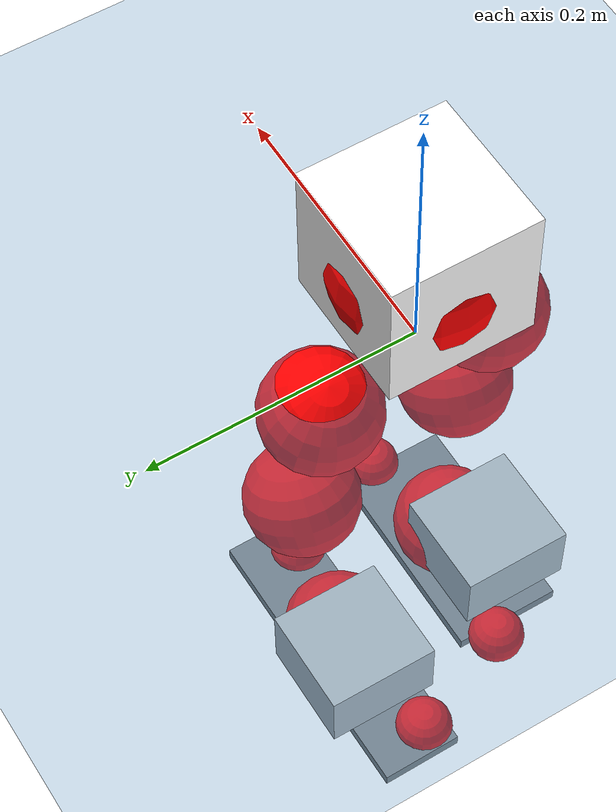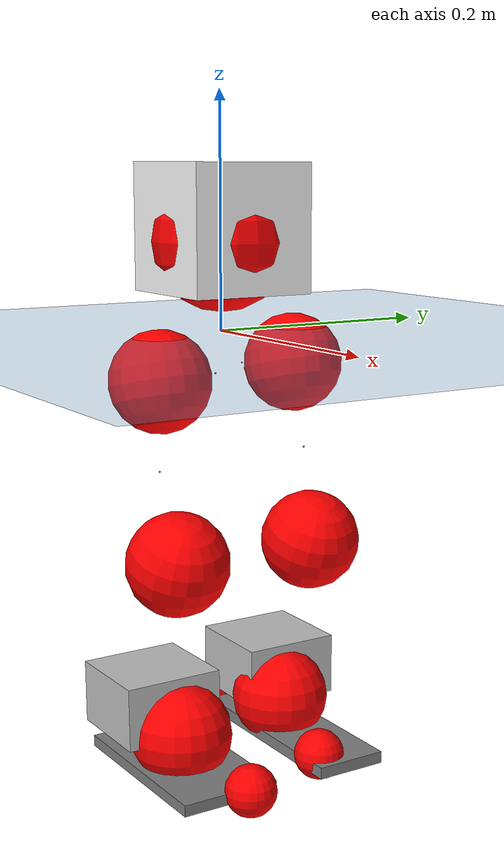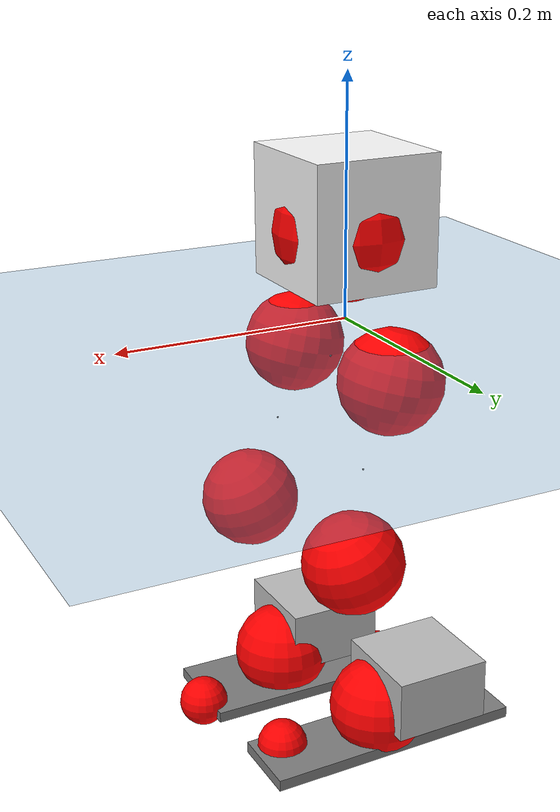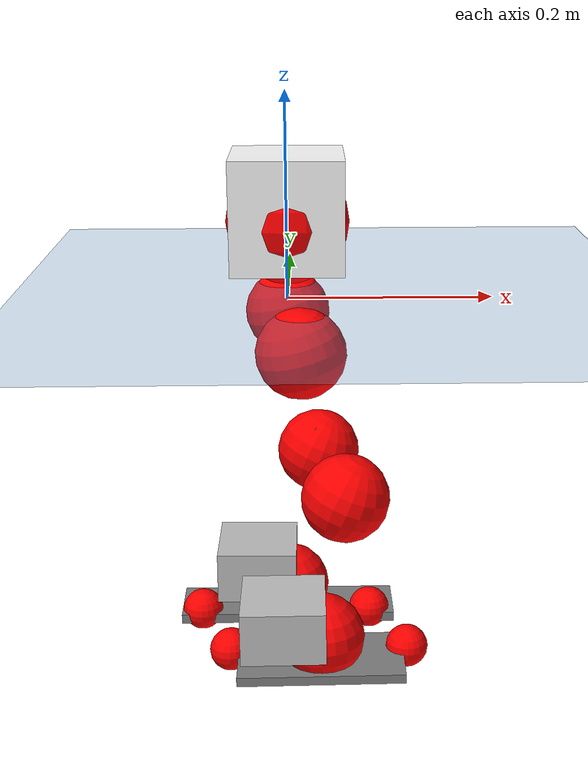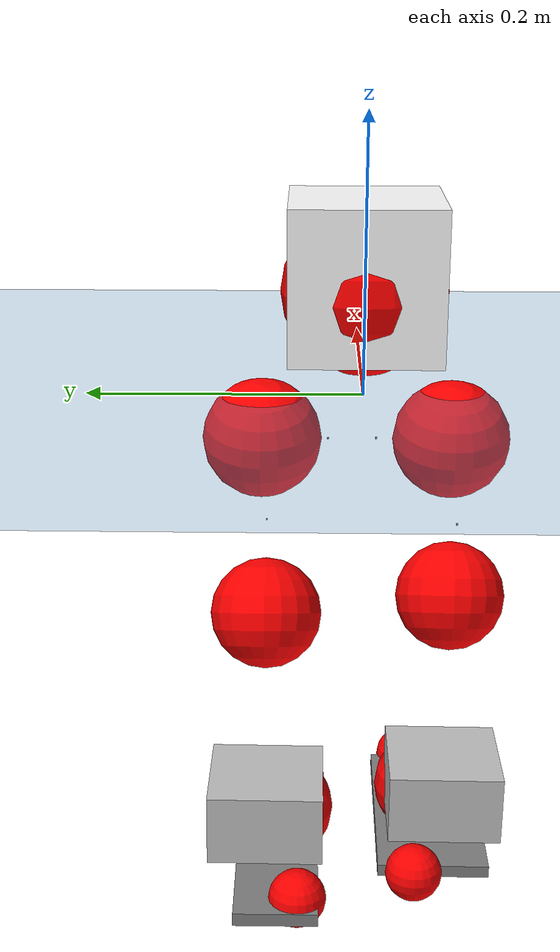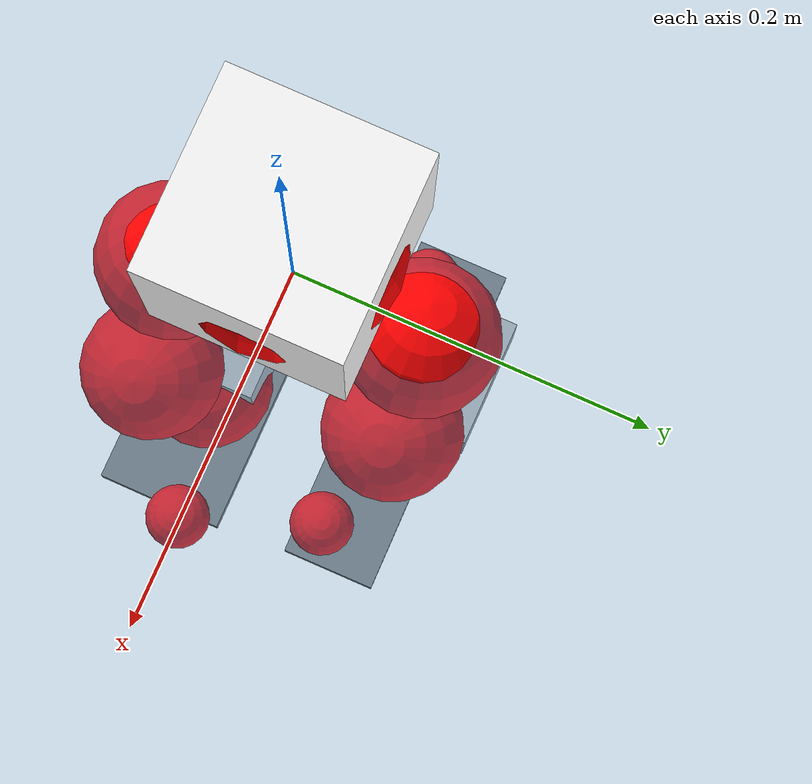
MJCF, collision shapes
<mujoco model="pi_12dof_release_v1">
  <compiler angle="radian" assetdir="assets" balanceinertia="true" inertiafromgeom="false"/>

  <option timestep="0.005" density="1.2" viscosity="2e-05"/>

  <size nkey="1"/>

  <visual>
    <quality shadowsize="8192"/>
    <map shadowclip="0.5"/>
  </visual>

  <default>
    <default class="/">
      <joint armature="0.01" damping="0.01" frictionloss="0.01"/>
      <geom contype="0" conaffinity="0" group="1" solref="-1000 -80"/>
      <site size="0.01 0.005 0.005" group="5"/>
      <general forcelimited="true" biastype="affine" gainprm="20" biasprm="0 -20 -0.5"/>
      <default class="foot">
        <geom size="0.0845 0.036 0.005" type="box" condim="6" group="4" priority="1" friction="0.9 0.2 0.2" solimp="0.015 1 0.005"/>
      </default>
      <default class="reward_collision_sphere">
        <geom group="5" rgba="1 0 0 1"/>
      </default>
    </default>
  </default>

  <asset>
    <texture type="skybox" colorspace="auto" name="//unnamed_texture_0" builtin="gradient" rgb1="0.95 0.95 0.95" rgb2="0.95 0.95 0.95" width="100" height="600"/>
    <texture type="2d" colorspace="auto" name="texplane" builtin="checker" rgb1="0.345 0.575 0.748" rgb2="0.345 0.575 0.748" markrgb="1 1 1" width="512" height="512"/>
    <material name="MatPlane" class="/" texture="texplane" texuniform="true" texrepeat="2 2" specular="0.9"/>
    <mesh name="baselink_1" class="/" file="baselink_1.STL"/>
    <mesh name="r_hip_pitch_link" class="/" file="r_hip_pitch_link.STL"/>
    <mesh name="r_hip_roll_link" class="/" file="r_hip_roll_link.STL"/>
    <mesh name="r_thigh_link" class="/" file="r_thigh_link.STL"/>
    <mesh name="r_calf_link" class="/" file="r_calf_link.STL"/>
    <mesh name="r_ankle_pitch_link" class="/" file="r_ankle_pitch_link.STL"/>
    <mesh name="r_ankle_roll_link" class="/" file="r_ankle_roll_link.STL"/>
    <mesh name="l_hip_pitch_link" class="/" file="l_hip_pitch_link.STL"/>
    <mesh name="l_hip_roll_link" class="/" file="l_hip_roll_link.STL"/>
    <mesh name="l_thigh_link" class="/" file="l_thigh_link.STL"/>
    <mesh name="l_calf_link" class="/" file="l_calf_link.STL"/>
    <mesh name="l_ankle_pitch_link" class="/" file="l_ankle_pitch_link.STL"/>
    <mesh name="l_ankle_roll_link" class="/" file="l_ankle_roll_link.STL"/>
  </asset>

  <worldbody>
    <geom name="floor" class="/" size="100 100 0.125" type="plane" group="0" material="MatPlane"/>
    <light name="toplight_shadow" class="/" pos="0 0 5" dir="0.0990148 0.0990148 -0.990148" type="directional" ambient="0.04 0.04 0.04" diffuse="0.55 0.55 0.55" specular="0.12 0.12 0.12"/>
    <light name="toplight_fill" class="/" pos="0 0 5" dir="0.0990148 0.0990148 -0.990148" type="directional" castshadow="false" ambient="0.04 0.04 0.04" diffuse="0.3 0.3 0.3" specular="0.08 0.08 0.08"/>
    <body name="trunk" pos="0.000810404 0.00043408 -0.0020044" quat="0.999999 0.000202499 0.00150339 0.000514606">
      <inertial pos="0.0148828 0.00834632 0.0478537" quat="0.694865 0.0101174 0.0108355 0.718987" mass="2.42179" diaginertia="0.043382 0.00280654 0.0071495"/>
      <joint name="//unnamed_joint_0" type="free"/>
      <geom name="//unnamed_geom_1" class="/" type="mesh" density="0" rgba="1 1 1 1" mesh="baselink_1"/>
      <geom name="//unnamed_geom_2" class="/" size="0.0540201 0.0540201 0.0540201" pos="0 0 0.088788" type="box" rgba="1 1 1 1"/>
      <geom name="//unnamed_geom_3" class="reward_collision_sphere" size="0.0594221" pos="0 0 0.0776895"/>
      <site name="imu" class="/" pos="-0.0484631 0.00273037 0.0481865" size="0.010804"/>
      <camera name="track" class="/" pos="0 -1.5845 0" quat="0.707107 0.707107 0 0" mode="trackcom"/>
      <camera name="ego_camera" class="/" pos="0.100433 0 0.199773" quat="-0.5 -0.5 0.5 0.5"/>
      <body name="r_hip_pitch_link" pos="0.00681413 -0.0105769 -0.0325872" quat="0.992202 0.000254937 -0.124643 -0.000125792">
        <inertial pos="0.00233471 -0.0369699 -0.000332008" quat="-0.0190663 0.705846 -0.0272644 0.707583" mass="0.507839" diaginertia="0.000545859 3.84074e-05 0.00016048"/>
        <joint name="r_hip_pitch_joint" class="/" pos="0 0 0" axis="-0.018514 -0.999808 -0.0063804" range="-1.71039 1.45539" armature="0.0153025" damping="0.0185416" frictionloss="0.0123665"/>
        <geom name="//unnamed_geom_4" class="/" type="mesh" density="0" rgba="0.75294 0.75294 0.75294 1" mesh="r_hip_pitch_link"/>
        <geom name="//unnamed_geom_5" class="/" size="0.000540201 0.000540201 0.000540201" type="box" rgba="0.75294 0.75294 0.75294 1"/>
        <body name="r_hip_roll_link" pos="0.00470644 -0.0553429 -0.00335332" quat="0.999989 0.00274522 -0.00141664 -0.00339285">
          <inertial pos="0.00082866 0.000786171 -0.0722582" quat="0.704584 -0.0751314 -0.118085 0.695681" mass="0.518508" diaginertia="0.00141704 9.69334e-05 0.000208691"/>
          <joint name="r_hip_roll_joint" class="/" pos="0 0 0" axis="-0.999449 0.00935136 0.0318447" stiffness="0.00618223" range="-0.0968414 0.508263" armature="0.0135971" damping="0.0526505" frictionloss="0.00533775"/>
          <geom name="//unnamed_geom_6" class="/" type="mesh" density="0" rgba="0.75294 0.75294 0.75294 1" mesh="r_hip_roll_link"/>
          <geom name="//unnamed_geom_7" class="/" size="0.000540201 0.000540201 0.000540201" type="box" rgba="0.75294 0.75294 0.75294 1"/>
          <geom name="//unnamed_geom_8" class="reward_collision_sphere" size="0.0432161"/>
          <body name="r_thigh_link" pos="-0.00517379 -0.00887022 -0.0731151" quat="1 -0.000159278 6.69892e-05 -4.49394e-05">
            <inertial pos="0.00180484 0.00116476 -0.0493083" quat="0.734406 0.678672 0.00385776 -0.00606883" mass="0.143637" diaginertia="0.000589353 2.99134e-05 9.69911e-05"/>
            <joint name="r_thigh_joint" class="/" pos="0 0 0" axis="0.000161772 6.33524e-05 -1" range="-0.174322 0.575001" armature="0.00496296" damping="0.0105002" frictionloss="0.00872072"/>
            <geom name="//unnamed_geom_9" class="/" type="mesh" density="0" rgba="0.75294 0.75294 0.75294 1" mesh="r_thigh_link"/>
            <geom name="//unnamed_geom_10" class="/" size="0.000540201 0.000540201 0.000540201" type="box" rgba="0.75294 0.75294 0.75294 1"/>
            <body name="r_calf_link" pos="0.00993249 -7.83171e-05 -0.0763473" quat="0.947695 0.000342406 0.319177 0.000281847">
              <inertial pos="0.00490412 0.0110116 -0.0717786" quat="0.99842 -0.0532942 -0.0165059 -0.00670876" mass="1.01215" diaginertia="0.0166628 0.000967472 0.000320897"/>
              <joint name="r_calf_joint" class="/" pos="0 0 0" axis="-0.00646894 -0.999517 -0.0303832" range="-1.64212 0.592041" armature="0.0129613" damping="0.00937225" frictionloss="0.0116184"/>
              <geom name="//unnamed_geom_11" class="/" type="mesh" density="0" rgba="0.75294 0.75294 0.75294 1" mesh="r_calf_link"/>
              <geom name="//unnamed_geom_12" class="/" size="0.000540201 0.000540201 0.000540201" type="box" rgba="0.75294 0.75294 0.75294 1"/>
              <geom name="//unnamed_geom_13" class="reward_collision_sphere" size="0.0432161"/>
              <body name="r_ankle_pitch_link" pos="-0.00487939 0.00495989 -0.147472" quat="0.97964 -0.000789527 -0.200735 0.00333139">
                <inertial pos="-0.00355664 0.00431994 0.00454056" quat="-0.0204021 0.707787 0.00644219 0.706102" mass="0.201307" diaginertia="0.00141093 7.59919e-05 0.000176851"/>
                <joint name="r_ankle_pitch_joint" class="/" pos="0 0 0" axis="-0.029622 -0.999557 -0.00299279" stiffness="0.0301295" range="-1.47329 0.386872" armature="0.00811666" damping="0.0456037" frictionloss="0.010094"/>
                <geom name="//unnamed_geom_14" class="/" type="mesh" density="0" rgba="0.75294 0.75294 0.75294 1" mesh="r_ankle_pitch_link"/>
                <geom name="//unnamed_geom_15" class="/" size="0.0421357 0.0432161 0.02701" type="box" rgba="0.75294 0.75294 0.75294 1"/>
                <body name="r_ankle_roll_link" pos="0.105395 0.00731643 -0.000874546" quat="0.999997 -0.000589429 -0.00151467 -0.00165397">
                  <inertial pos="-0.0249403 0.000754344 -0.0183355" quat="0.52396 0.458468 0.460527 0.550625" mass="0.55907" diaginertia="0.00427622 0.000304778 0.000439045"/>
                  <joint name="r_ankle_roll_joint" class="/" pos="0 0 0" axis="-0.999771 -0.0130265 -0.0169554" range="-0.263188 0.195172" armature="0.00531913" damping="0.00399238" frictionloss="0.010321"/>
                  <geom name="//unnamed_geom_16" class="/" type="mesh" density="0" rgba="0.75294 0.75294 0.75294 1" mesh="r_ankle_roll_link"/>
                  <geom name="//unnamed_geom_17" class="/" type="mesh" rgba="0.75294 0.75294 0.75294 1" mesh="r_ankle_roll_link"/>
                  <geom name="right_foot" class="foot" size="0.0842216 0.042592 0.00475558" pos="-0.0682943 0 -0.0488334"/>
                  <geom name="//unnamed_geom_19" class="reward_collision_sphere" size="0.0432161" pos="-0.0669552 0 -0.022197"/>
                  <geom name="//unnamed_geom_20" class="reward_collision_sphere" size="0.021608" pos="0.0200866 0.015845 -0.044394"/>
                  <geom name="//unnamed_geom_21" class="reward_collision_sphere" size="0.021608" pos="-0.160692 0.015845 -0.044394"/>
                  <site name="right_foot" class="foot" pos="-0.0682943 0 -0.0488334" size="0.010804"/>
                </body>
              </body>
            </body>
          </body>
        </body>
      </body>
      <body name="l_hip_pitch_link" pos="-0.00872292 0.024788 -0.0280522" quat="0.992222 0.000129714 -0.12448 -0.000335357">
        <inertial pos="0.000283427 0.0370343 0.0101511" quat="-0.0259911 0.681118 0.0235049 0.731335" mass="0.431594" diaginertia="0.000411116 2.87795e-05 0.000156132"/>
        <joint name="l_hip_pitch_joint" class="/" pos="0 0 0" axis="-0.00468012 0.999981 0.00400487" stiffness="0.0274206" range="-1.23679 1.75134" armature="0.0117735" damping="0" frictionloss="0.0139314"/>
        <geom name="//unnamed_geom_22" class="/" type="mesh" density="0" rgba="0.75294 0.75294 0.75294 1" mesh="l_hip_pitch_link"/>
        <geom name="//unnamed_geom_23" class="/" size="0.000540201 0.000540201 0.000540201" type="box" rgba="0.75294 0.75294 0.75294 1"/>
        <body name="l_hip_roll_link" pos="0.0060727 0.0478231 -0.00356836" quat="0.999999 0.000319943 0.000418096 -0.00124594">
          <inertial pos="0.00894503 -0.00158065 -0.0571616" quat="0.695874 -0.0805345 -0.0759746 0.709578" mass="0.545973" diaginertia="0.00176039 8.61572e-05 0.000226533"/>
          <joint name="l_hip_roll_joint" class="/" pos="0 0 0" axis="-0.999999 -0.000615309 -0.000859983" range="-0.540577 0.114957" armature="0.0112748" damping="0" frictionloss="0.0132799"/>
          <geom name="//unnamed_geom_24" class="/" type="mesh" density="0" rgba="0.75294 0.75294 0.75294 1" mesh="l_hip_roll_link"/>
          <geom name="//unnamed_geom_25" class="/" size="0.000540201 0.000540201 0.000540201" type="box" rgba="0.75294 0.75294 0.75294 1"/>
          <geom name="//unnamed_geom_26" class="reward_collision_sphere" size="0.0432161"/>
          <body name="l_thigh_link" pos="0.00416587 -0.00264672 -0.0753299" quat="1 -0.000633813 0.000195463 0.00016975">
            <inertial pos="-0.00395906 -0.0096878 -0.0512197" quat="0.667552 0.744165 -0.00888905 -0.0226687" mass="0.121494" diaginertia="0.000492619 2.25237e-05 8.16552e-05"/>
            <joint name="l_thigh_joint" class="/" pos="0 0 0" axis="-0.000591656 -0.000949477 -0.999999" stiffness="0.0404859" range="-0.400553 0.398346" armature="0.00990138" damping="0.00213938" frictionloss="0.0116539"/>
            <geom name="//unnamed_geom_27" class="/" type="mesh" density="0" rgba="0.75294 0.75294 0.75294 1" mesh="l_thigh_link"/>
            <geom name="//unnamed_geom_28" class="/" size="0.000540201 0.000540201 0.000540201" type="box" rgba="0.75294 0.75294 0.75294 1"/>
            <body name="l_calf_link" pos="-0.0115848 0.0011442 -0.0812235" quat="0.947845 -0.00106358 0.318731 -0.000114786">
              <inertial pos="0.00522852 -0.00138449 -0.0671365" quat="0.998006 0.0162703 0.0481256 0.0374709" mass="1.05531" diaginertia="0.0173586 0.00127075 0.000335508"/>
              <joint name="l_calf_joint" class="/" pos="0 0 0" axis="-0.0161544 0.999291 -0.0340077" range="-0.671927 1.60983" armature="0.0108728" damping="0.038234" frictionloss="0.00957658"/>
              <geom name="//unnamed_geom_29" class="/" type="mesh" density="0" rgba="0.75294 0.75294 0.75294 1" mesh="l_calf_link"/>
              <geom name="//unnamed_geom_30" class="/" size="0.000540201 0.000540201 0.000540201" type="box" rgba="0.75294 0.75294 0.75294 1"/>
              <geom name="//unnamed_geom_31" class="reward_collision_sphere" size="0.0432161"/>
              <body name="l_ankle_pitch_link" pos="-0.0104793 -0.0019196 -0.146186" quat="0.980401 0.0035807 -0.196977 0.000596974">
                <inertial pos="0.00784504 -0.00545371 -0.000622736" quat="-0.00311983 0.707176 0.00369968 0.707021" mass="0.256824" diaginertia="0.00153527 7.24771e-05 0.000212679"/>
                <joint name="l_ankle_pitch_joint" class="/" pos="0 0 0" axis="0.00460102 0.999959 -0.0078363" range="-0.423941 1.41422" armature="0.0135379" damping="0" frictionloss="0.00925486"/>
                <geom name="//unnamed_geom_32" class="/" type="mesh" density="0" rgba="0.75294 0.75294 0.75294 1" mesh="l_ankle_pitch_link"/>
                <geom name="//unnamed_geom_33" class="/" size="0.0421357 0.0432161 0.02701" type="box" rgba="0.75294 0.75294 0.75294 1"/>
                <body name="l_ankle_roll_link" pos="0.100784 -0.00754155 0.000143187" quat="0.999988 -0.00148995 -0.00109191 0.0044517">
                  <inertial pos="-0.0398222 0.00319536 -0.0173847" quat="0.58066 0.411073 0.446686 0.542518" mass="0.627787" diaginertia="0.00498825 0.000320568 0.000501404"/>
                  <joint name="l_ankle_roll_joint" class="/" pos="0 0 0" axis="-0.999961 0.00332939 0.0081924" stiffness="0.0468622" range="-0.318931 0.272078" armature="0.00641042" damping="0" frictionloss="0.00904692"/>
                  <geom name="//unnamed_geom_34" class="/" type="mesh" density="0" rgba="0.75294 0.75294 0.75294 1" mesh="l_ankle_roll_link"/>
                  <geom name="//unnamed_geom_35" class="/" type="mesh" rgba="0.75294 0.75294 0.75294 1" mesh="l_ankle_roll_link"/>
                  <geom name="left_foot" class="foot" size="0.11471 0.0314132 0.00505752" pos="-0.0682943 0 -0.0488334"/>
                  <geom name="//unnamed_geom_37" class="reward_collision_sphere" size="0.0432161" pos="-0.0669552 0 -0.022197"/>
                  <geom name="//unnamed_geom_38" class="reward_collision_sphere" size="0.021608" pos="0.0200866 -0.015845 -0.044394"/>
                  <geom name="//unnamed_geom_39" class="reward_collision_sphere" size="0.021608" pos="-0.160692 -0.015845 -0.044394"/>
                  <site name="left_foot" class="foot" pos="-0.0682943 0 -0.0488334" size="0.010804"/>
                </body>
              </body>
            </body>
          </body>
        </body>
      </body>
    </body>
  </worldbody>

  <contact>
    <pair class="/" geom1="floor" geom2="right_foot" name="//unnamed_contact_1"/>
    <pair class="/" geom1="floor" geom2="left_foot" name="//unnamed_contact_0"/>
  </contact>

  <actuator>
    <general name="r_hip_pitch_joint" class="/" joint="r_hip_pitch_joint" forcerange="-16.3193 16.3193" gainprm="28.0088" biasprm="0 -28.0088 -0.604242"/>
    <general name="r_hip_roll_joint" class="/" joint="r_hip_roll_joint" forcerange="-23.1197 23.1197" gainprm="28.0088" biasprm="0 -28.0088 -0.604242"/>
    <general name="r_thigh_joint" class="/" joint="r_thigh_joint" forcerange="-24.1171 24.1171" gainprm="28.0088" biasprm="0 -28.0088 -0.604242"/>
    <general name="r_calf_joint" class="/" joint="r_calf_joint" forcerange="-14.6395 14.6395" gainprm="28.0088" biasprm="0 -28.0088 -0.604242"/>
    <general name="r_ankle_pitch_joint" class="/" joint="r_ankle_pitch_joint" forcerange="-22.8862 22.8862" gainprm="28.0088" biasprm="0 -28.0088 -0.604242"/>
    <general name="r_ankle_roll_joint" class="/" joint="r_ankle_roll_joint" forcerange="-21.597 21.597" gainprm="28.0088" biasprm="0 -28.0088 -0.604242"/>
    <general name="l_hip_pitch_joint" class="/" joint="l_hip_pitch_joint" forcerange="-28.8349 28.8349" gainprm="28.0088" biasprm="0 -28.0088 -0.604242"/>
    <general name="l_hip_roll_joint" class="/" joint="l_hip_roll_joint" forcerange="-31.407 31.407" gainprm="28.0088" biasprm="0 -28.0088 -0.604242"/>
    <general name="l_thigh_joint" class="/" joint="l_thigh_joint" forcerange="-24.26 24.26" gainprm="28.0088" biasprm="0 -28.0088 -0.604242"/>
    <general name="l_calf_joint" class="/" joint="l_calf_joint" forcerange="-24.1805 24.1805" gainprm="28.0088" biasprm="0 -28.0088 -0.604242"/>
    <general name="l_ankle_pitch_joint" class="/" joint="l_ankle_pitch_joint" forcerange="-17.3609 17.3609" gainprm="28.0088" biasprm="0 -28.0088 -0.604242"/>
    <general name="l_ankle_roll_joint" class="/" joint="l_ankle_roll_joint" forcerange="-22.6059 22.6059" gainprm="28.0088" biasprm="0 -28.0088 -0.604242"/>
  </actuator>

  <sensor>
    <gyro site="imu" name="imu_angular_velocity"/>
    <velocimeter site="imu" name="imu_linear_velocity"/>
    <framelinvel objtype="site" objname="left_foot" name="left_foot_global_linear_velocity"/>
    <framelinvel objtype="site" objname="right_foot" name="right_foot_global_linear_velocity"/>
  </sensor>

  <keyframe>
    <key name="home" qpos="0 0 0.291 1 0 0 0 0.4 0 0 -0.8 0.4 0 -0.4 0 0 0.8 -0.4 0"/>
  </keyframe>
</mujoco>
